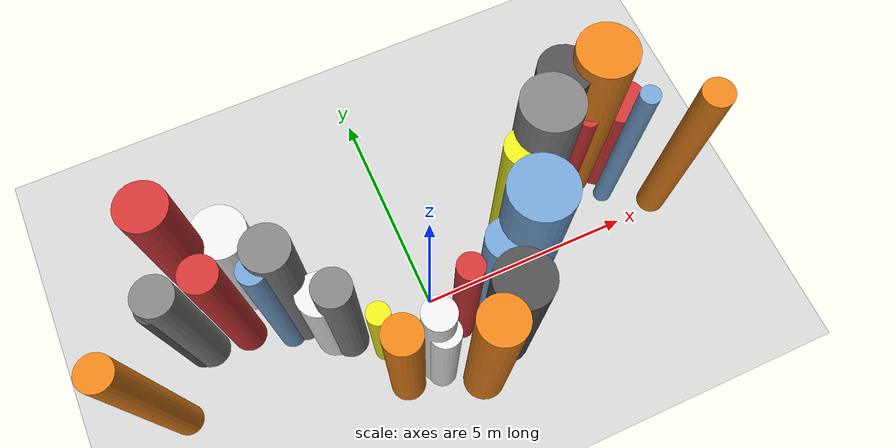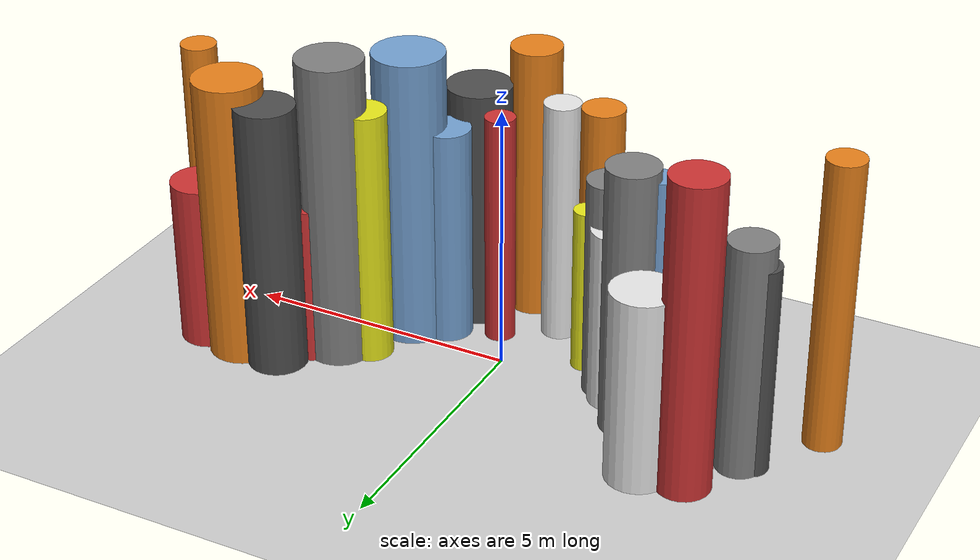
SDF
<?xml version='1.0'?>
<sdf version='1.6'>
  <world name='routeA_rl_v1__dense_recovery__rl_val__s_turn_multi_obstacle__000109'>
    <!-- Sun light -->
    <light name='sun' type='directional'>
      <cast_shadows>1</cast_shadows>
      <pose>0 0 10 0 0 0</pose>
      <diffuse>0.8 0.8 0.8 1</diffuse>
      <specular>0.2 0.2 0.2 1</specular>
      <attenuation>
        <range>1000</range>
        <constant>0.9</constant>
        <linear>0.01</linear>
        <quadratic>0.001</quadratic>
      </attenuation>
      <direction>-0.5 0.1 -0.9</direction>
    </light>

    <!-- Ground plane -->
    <model name='ground_plane'>
      <static>1</static>
      <link name='link'>
        <collision name='collision'>
          <geometry>
            <plane>
              <normal>0 0 1</normal>
              <size>100 100</size>
            </plane>
          </geometry>
          <surface>
            <contact>
              <collide_bitmask>65535</collide_bitmask>
              <ode/>
            </contact>
            <friction>
              <ode>
                <mu>100</mu>
                <mu2>50</mu2>
              </ode>
              <torsional><ode/></torsional>
            </friction>
            <bounce/>
          </surface>
          <max_contacts>10</max_contacts>
        </collision>
        <visual name='visual'>
          <cast_shadows>0</cast_shadows>
          <geometry>
            <plane>
              <normal>0 0 1</normal>
              <size>100 100</size>
            </plane>
          </geometry>
          <material>
            <script>
              <uri>file://media/materials/scripts/gazebo.material</uri>
              <n>Gazebo/Grey</n>
            </script>
          </material>
        </visual>
      </link>
    </model>

    <!-- Environment -->
    <magnetic_field>6e-06 2.3e-05 -4.2e-05</magnetic_field>
    <atmosphere type='adiabatic'/>
    <physics name='default_physics' default='0' type='ode'>
      <gravity>0 0 -9.8</gravity>
      <max_step_size>0.004</max_step_size>
      <real_time_factor>1</real_time_factor>
      <real_time_update_rate>250</real_time_update_rate>
    </physics>
    <scene>
      <ambient>0.4 0.4 0.4 1</ambient>
      <background>0.7 0.7 0.7 1</background>
      <shadows>1</shadows>
    </scene>
    <wind/>
    <spherical_coordinates>
      <surface_model>EARTH_WGS84</surface_model>
      <latitude_deg>0</latitude_deg>
      <longitude_deg>0</longitude_deg>
      <elevation>0</elevation>
      <heading_deg>0</heading_deg>
    </spherical_coordinates>

    <!-- ============ OBSTACLES (28) ============ -->
    <model name='s_turn_obs_0'>
      <static>1</static>
      <link name='link'>
        <visual name='visual'>
          <geometry>
            <cylinder>
              <radius>0.3452</radius>
              <length>5.4416</length>
            </cylinder>
          </geometry>
          <material>
            <script>
              <n>Gazebo/Orange</n>
              <uri>file://media/materials/scripts/gazebo.material</uri>
            </script>
            <ambient>0.9 0.5 0.1 1</ambient>
          </material>
        </visual>
        <collision name='collision'>
          <geometry>
            <cylinder>
              <radius>0.3452</radius>
              <length>5.4416</length>
            </cylinder>
          </geometry>
          <max_contacts>10</max_contacts>
          <surface>
            <contact><ode/></contact>
            <bounce/>
            <friction>
              <ode><mu>1</mu><mu2>1</mu2></ode>
              <torsional><ode/></torsional>
            </friction>
          </surface>
        </collision>
      </link>
      <pose>-6.0000 -0.2883 2.7208 0 0 0.0000</pose>
    </model>

    <model name='s_turn_obs_1'>
      <static>1</static>
      <link name='link'>
        <visual name='visual'>
          <geometry>
            <cylinder>
              <radius>0.3060</radius>
              <length>3.9132</length>
            </cylinder>
          </geometry>
          <material>
            <script>
              <n>Gazebo/DarkGrey</n>
              <uri>file://media/materials/scripts/gazebo.material</uri>
            </script>
            <ambient>0.3 0.3 0.3 1</ambient>
          </material>
        </visual>
        <collision name='collision'>
          <geometry>
            <cylinder>
              <radius>0.3060</radius>
              <length>3.9132</length>
            </cylinder>
          </geometry>
          <max_contacts>10</max_contacts>
          <surface>
            <contact><ode/></contact>
            <bounce/>
            <friction>
              <ode><mu>1</mu><mu2>1</mu2></ode>
              <torsional><ode/></torsional>
            </friction>
          </surface>
        </collision>
      </link>
      <pose>-5.2000 0.9692 1.9566 0 0 0.0000</pose>
    </model>

    <model name='s_turn_obs_2'>
      <static>1</static>
      <link name='link'>
        <visual name='visual'>
          <geometry>
            <cylinder>
              <radius>0.4857</radius>
              <length>5.8232</length>
            </cylinder>
          </geometry>
          <material>
            <script>
              <n>Gazebo/Red</n>
              <uri>file://media/materials/scripts/gazebo.material</uri>
            </script>
            <ambient>0.8 0.2 0.2 1</ambient>
          </material>
        </visual>
        <collision name='collision'>
          <geometry>
            <cylinder>
              <radius>0.4857</radius>
              <length>5.8232</length>
            </cylinder>
          </geometry>
          <max_contacts>10</max_contacts>
          <surface>
            <contact><ode/></contact>
            <bounce/>
            <friction>
              <ode><mu>1</mu><mu2>1</mu2></ode>
              <torsional><ode/></torsional>
            </friction>
          </surface>
        </collision>
      </link>
      <pose>-4.4000 1.9747 2.9116 0 0 0.0000</pose>
    </model>

    <model name='s_turn_obs_3'>
      <static>1</static>
      <link name='link'>
        <visual name='visual'>
          <geometry>
            <cylinder>
              <radius>0.5820</radius>
              <length>3.6021</length>
            </cylinder>
          </geometry>
          <material>
            <script>
              <n>Gazebo/White</n>
              <uri>file://media/materials/scripts/gazebo.material</uri>
            </script>
            <ambient>0.9 0.9 0.9 1</ambient>
          </material>
        </visual>
        <collision name='collision'>
          <geometry>
            <cylinder>
              <radius>0.5820</radius>
              <length>3.6021</length>
            </cylinder>
          </geometry>
          <max_contacts>10</max_contacts>
          <surface>
            <contact><ode/></contact>
            <bounce/>
            <friction>
              <ode><mu>1</mu><mu2>1</mu2></ode>
              <torsional><ode/></torsional>
            </friction>
          </surface>
        </collision>
      </link>
      <pose>-3.6000 2.0398 1.8010 0 0 0.0000</pose>
    </model>

    <model name='s_turn_obs_4'>
      <static>1</static>
      <link name='link'>
        <visual name='visual'>
          <geometry>
            <cylinder>
              <radius>0.4750</radius>
              <length>5.0209</length>
            </cylinder>
          </geometry>
          <material>
            <script>
              <n>Gazebo/Grey</n>
              <uri>file://media/materials/scripts/gazebo.material</uri>
            </script>
            <ambient>0.5 0.5 0.5 1</ambient>
          </material>
        </visual>
        <collision name='collision'>
          <geometry>
            <cylinder>
              <radius>0.4750</radius>
              <length>5.0209</length>
            </cylinder>
          </geometry>
          <max_contacts>10</max_contacts>
          <surface>
            <contact><ode/></contact>
            <bounce/>
            <friction>
              <ode><mu>1</mu><mu2>1</mu2></ode>
              <torsional><ode/></torsional>
            </friction>
          </surface>
        </collision>
      </link>
      <pose>-2.8000 0.7762 2.5105 0 0 0.0000</pose>
    </model>

    <model name='s_turn_obs_5'>
      <static>1</static>
      <link name='link'>
        <visual name='visual'>
          <geometry>
            <cylinder>
              <radius>0.4033</radius>
              <length>4.1637</length>
            </cylinder>
          </geometry>
          <material>
            <script>
              <n>Gazebo/Grey</n>
              <uri>file://media/materials/scripts/gazebo.material</uri>
            </script>
            <ambient>0.5 0.5 0.5 1</ambient>
          </material>
        </visual>
        <collision name='collision'>
          <geometry>
            <cylinder>
              <radius>0.4033</radius>
              <length>4.1637</length>
            </cylinder>
          </geometry>
          <max_contacts>10</max_contacts>
          <surface>
            <contact><ode/></contact>
            <bounce/>
            <friction>
              <ode><mu>1</mu><mu2>1</mu2></ode>
              <torsional><ode/></torsional>
            </friction>
          </surface>
        </collision>
      </link>
      <pose>-2.0000 -0.0886 2.0819 0 0 0.0000</pose>
    </model>

    <model name='s_turn_obs_6'>
      <static>1</static>
      <link name='link'>
        <visual name='visual'>
          <geometry>
            <cylinder>
              <radius>0.3929</radius>
              <length>4.6764</length>
            </cylinder>
          </geometry>
          <material>
            <script>
              <n>Gazebo/Orange</n>
              <uri>file://media/materials/scripts/gazebo.material</uri>
            </script>
            <ambient>0.9 0.5 0.1 1</ambient>
          </material>
        </visual>
        <collision name='collision'>
          <geometry>
            <cylinder>
              <radius>0.3929</radius>
              <length>4.6764</length>
            </cylinder>
          </geometry>
          <max_contacts>10</max_contacts>
          <surface>
            <contact><ode/></contact>
            <bounce/>
            <friction>
              <ode><mu>1</mu><mu2>1</mu2></ode>
              <torsional><ode/></torsional>
            </friction>
          </surface>
        </collision>
      </link>
      <pose>-1.2000 -1.5352 2.3382 0 0 0.0000</pose>
    </model>

    <model name='s_turn_obs_7'>
      <static>1</static>
      <link name='link'>
        <visual name='visual'>
          <geometry>
            <cylinder>
              <radius>0.3205</radius>
              <length>3.8468</length>
            </cylinder>
          </geometry>
          <material>
            <script>
              <n>Gazebo/White</n>
              <uri>file://media/materials/scripts/gazebo.material</uri>
            </script>
            <ambient>0.9 0.9 0.9 1</ambient>
          </material>
        </visual>
        <collision name='collision'>
          <geometry>
            <cylinder>
              <radius>0.3205</radius>
              <length>3.8468</length>
            </cylinder>
          </geometry>
          <max_contacts>10</max_contacts>
          <surface>
            <contact><ode/></contact>
            <bounce/>
            <friction>
              <ode><mu>1</mu><mu2>1</mu2></ode>
              <torsional><ode/></torsional>
            </friction>
          </surface>
        </collision>
      </link>
      <pose>-0.4000 -1.6227 1.9234 0 0 0.0000</pose>
    </model>

    <model name='s_turn_obs_8'>
      <static>1</static>
      <link name='link'>
        <visual name='visual'>
          <geometry>
            <cylinder>
              <radius>0.4733</radius>
              <length>5.2748</length>
            </cylinder>
          </geometry>
          <material>
            <script>
              <n>Gazebo/Orange</n>
              <uri>file://media/materials/scripts/gazebo.material</uri>
            </script>
            <ambient>0.9 0.5 0.1 1</ambient>
          </material>
        </visual>
        <collision name='collision'>
          <geometry>
            <cylinder>
              <radius>0.4733</radius>
              <length>5.2748</length>
            </cylinder>
          </geometry>
          <max_contacts>10</max_contacts>
          <surface>
            <contact><ode/></contact>
            <bounce/>
            <friction>
              <ode><mu>1</mu><mu2>1</mu2></ode>
              <torsional><ode/></torsional>
            </friction>
          </surface>
        </collision>
      </link>
      <pose>0.4000 -2.1382 2.6374 0 0 0.0000</pose>
    </model>

    <model name='s_turn_obs_9'>
      <static>1</static>
      <link name='link'>
        <visual name='visual'>
          <geometry>
            <cylinder>
              <radius>0.6036</radius>
              <length>4.6276</length>
            </cylinder>
          </geometry>
          <material>
            <script>
              <n>Gazebo/DarkGrey</n>
              <uri>file://media/materials/scripts/gazebo.material</uri>
            </script>
            <ambient>0.3 0.3 0.3 1</ambient>
          </material>
        </visual>
        <collision name='collision'>
          <geometry>
            <cylinder>
              <radius>0.6036</radius>
              <length>4.6276</length>
            </cylinder>
          </geometry>
          <max_contacts>10</max_contacts>
          <surface>
            <contact><ode/></contact>
            <bounce/>
            <friction>
              <ode><mu>1</mu><mu2>1</mu2></ode>
              <torsional><ode/></torsional>
            </friction>
          </surface>
        </collision>
      </link>
      <pose>1.2000 -1.4764 2.3138 0 0 0.0000</pose>
    </model>

    <model name='s_turn_obs_10'>
      <static>1</static>
      <link name='link'>
        <visual name='visual'>
          <geometry>
            <cylinder>
              <radius>0.6620</radius>
              <length>5.5486</length>
            </cylinder>
          </geometry>
          <material>
            <script>
              <n>Gazebo/Blue</n>
              <uri>file://media/materials/scripts/gazebo.material</uri>
            </script>
            <ambient>0.447 0.624 0.812 1</ambient>
          </material>
        </visual>
        <collision name='collision'>
          <geometry>
            <cylinder>
              <radius>0.6620</radius>
              <length>5.5486</length>
            </cylinder>
          </geometry>
          <max_contacts>10</max_contacts>
          <surface>
            <contact><ode/></contact>
            <bounce/>
            <friction>
              <ode><mu>1</mu><mu2>1</mu2></ode>
              <torsional><ode/></torsional>
            </friction>
          </surface>
        </collision>
      </link>
      <pose>2.0000 -0.3585 2.7743 0 0 0.0000</pose>
    </model>

    <model name='s_turn_obs_11'>
      <static>1</static>
      <link name='link'>
        <visual name='visual'>
          <geometry>
            <cylinder>
              <radius>0.6121</radius>
              <length>5.8030</length>
            </cylinder>
          </geometry>
          <material>
            <script>
              <n>Gazebo/Grey</n>
              <uri>file://media/materials/scripts/gazebo.material</uri>
            </script>
            <ambient>0.5 0.5 0.5 1</ambient>
          </material>
        </visual>
        <collision name='collision'>
          <geometry>
            <cylinder>
              <radius>0.6121</radius>
              <length>5.8030</length>
            </cylinder>
          </geometry>
          <max_contacts>10</max_contacts>
          <surface>
            <contact><ode/></contact>
            <bounce/>
            <friction>
              <ode><mu>1</mu><mu2>1</mu2></ode>
              <torsional><ode/></torsional>
            </friction>
          </surface>
        </collision>
      </link>
      <pose>2.8000 0.9427 2.9015 0 0 0.0000</pose>
    </model>

    <model name='s_turn_obs_12'>
      <static>1</static>
      <link name='link'>
        <visual name='visual'>
          <geometry>
            <cylinder>
              <radius>0.5480</radius>
              <length>5.1055</length>
            </cylinder>
          </geometry>
          <material>
            <script>
              <n>Gazebo/DarkGrey</n>
              <uri>file://media/materials/scripts/gazebo.material</uri>
            </script>
            <ambient>0.3 0.3 0.3 1</ambient>
          </material>
        </visual>
        <collision name='collision'>
          <geometry>
            <cylinder>
              <radius>0.5480</radius>
              <length>5.1055</length>
            </cylinder>
          </geometry>
          <max_contacts>10</max_contacts>
          <surface>
            <contact><ode/></contact>
            <bounce/>
            <friction>
              <ode><mu>1</mu><mu2>1</mu2></ode>
              <torsional><ode/></torsional>
            </friction>
          </surface>
        </collision>
      </link>
      <pose>3.6000 1.7902 2.5528 0 0 0.0000</pose>
    </model>

    <model name='s_turn_obs_13'>
      <static>1</static>
      <link name='link'>
        <visual name='visual'>
          <geometry>
            <cylinder>
              <radius>0.6222</radius>
              <length>5.3927</length>
            </cylinder>
          </geometry>
          <material>
            <script>
              <n>Gazebo/Orange</n>
              <uri>file://media/materials/scripts/gazebo.material</uri>
            </script>
            <ambient>0.9 0.5 0.1 1</ambient>
          </material>
        </visual>
        <collision name='collision'>
          <geometry>
            <cylinder>
              <radius>0.6222</radius>
              <length>5.3927</length>
            </cylinder>
          </geometry>
          <max_contacts>10</max_contacts>
          <surface>
            <contact><ode/></contact>
            <bounce/>
            <friction>
              <ode><mu>1</mu><mu2>1</mu2></ode>
              <torsional><ode/></torsional>
            </friction>
          </surface>
        </collision>
      </link>
      <pose>4.4000 1.6831 2.6964 0 0 0.0000</pose>
    </model>

    <model name='s_turn_obs_14'>
      <static>1</static>
      <link name='link'>
        <visual name='visual'>
          <geometry>
            <cylinder>
              <radius>0.5362</radius>
              <length>3.1604</length>
            </cylinder>
          </geometry>
          <material>
            <script>
              <n>Gazebo/Red</n>
              <uri>file://media/materials/scripts/gazebo.material</uri>
            </script>
            <ambient>0.8 0.2 0.2 1</ambient>
          </material>
        </visual>
        <collision name='collision'>
          <geometry>
            <cylinder>
              <radius>0.5362</radius>
              <length>3.1604</length>
            </cylinder>
          </geometry>
          <max_contacts>10</max_contacts>
          <surface>
            <contact><ode/></contact>
            <bounce/>
            <friction>
              <ode><mu>1</mu><mu2>1</mu2></ode>
              <torsional><ode/></torsional>
            </friction>
          </surface>
        </collision>
      </link>
      <pose>5.2000 1.5671 1.5802 0 0 0.0000</pose>
    </model>

    <model name='s_turn_obs_15'>
      <static>1</static>
      <link name='link'>
        <visual name='visual'>
          <geometry>
            <cylinder>
              <radius>0.3290</radius>
              <length>5.0804</length>
            </cylinder>
          </geometry>
          <material>
            <script>
              <n>Gazebo/Orange</n>
              <uri>file://media/materials/scripts/gazebo.material</uri>
            </script>
            <ambient>0.9 0.5 0.1 1</ambient>
          </material>
        </visual>
        <collision name='collision'>
          <geometry>
            <cylinder>
              <radius>0.3290</radius>
              <length>5.0804</length>
            </cylinder>
          </geometry>
          <max_contacts>10</max_contacts>
          <surface>
            <contact><ode/></contact>
            <bounce/>
            <friction>
              <ode><mu>1</mu><mu2>1</mu2></ode>
              <torsional><ode/></torsional>
            </friction>
          </surface>
        </collision>
      </link>
      <pose>6.0000 0.1907 2.5402 0 0 0.0000</pose>
    </model>

    <model name='s_turn_obs2_0'>
      <static>1</static>
      <link name='link'>
        <visual name='visual'>
          <geometry>
            <cylinder>
              <radius>0.4214</radius>
              <length>4.3391</length>
            </cylinder>
          </geometry>
          <material>
            <script>
              <n>Gazebo/Grey</n>
              <uri>file://media/materials/scripts/gazebo.material</uri>
            </script>
            <ambient>0.5 0.5 0.5 1</ambient>
          </material>
        </visual>
        <collision name='collision'>
          <geometry>
            <cylinder>
              <radius>0.4214</radius>
              <length>4.3391</length>
            </cylinder>
          </geometry>
          <max_contacts>10</max_contacts>
          <surface>
            <contact><ode/></contact>
            <bounce/>
            <friction>
              <ode><mu>1</mu><mu2>1</mu2></ode>
              <torsional><ode/></torsional>
            </friction>
          </surface>
        </collision>
      </link>
      <pose>-5.0000 1.0142 2.1696 0 0 0.0000</pose>
    </model>

    <model name='s_turn_obs2_1'>
      <static>1</static>
      <link name='link'>
        <visual name='visual'>
          <geometry>
            <cylinder>
              <radius>0.3874</radius>
              <length>4.5462</length>
            </cylinder>
          </geometry>
          <material>
            <script>
              <n>Gazebo/Red</n>
              <uri>file://media/materials/scripts/gazebo.material</uri>
            </script>
            <ambient>0.8 0.2 0.2 1</ambient>
          </material>
        </visual>
        <collision name='collision'>
          <geometry>
            <cylinder>
              <radius>0.3874</radius>
              <length>4.5462</length>
            </cylinder>
          </geometry>
          <max_contacts>10</max_contacts>
          <surface>
            <contact><ode/></contact>
            <bounce/>
            <friction>
              <ode><mu>1</mu><mu2>1</mu2></ode>
              <torsional><ode/></torsional>
            </friction>
          </surface>
        </collision>
      </link>
      <pose>-4.0909 0.9881 2.2731 0 0 0.0000</pose>
    </model>

    <model name='s_turn_obs2_2'>
      <static>1</static>
      <link name='link'>
        <visual name='visual'>
          <geometry>
            <cylinder>
              <radius>0.2843</radius>
              <length>4.8138</length>
            </cylinder>
          </geometry>
          <material>
            <script>
              <n>Gazebo/Blue</n>
              <uri>file://media/materials/scripts/gazebo.material</uri>
            </script>
            <ambient>0.447 0.624 0.812 1</ambient>
          </material>
        </visual>
        <collision name='collision'>
          <geometry>
            <cylinder>
              <radius>0.2843</radius>
              <length>4.8138</length>
            </cylinder>
          </geometry>
          <max_contacts>10</max_contacts>
          <surface>
            <contact><ode/></contact>
            <bounce/>
            <friction>
              <ode><mu>1</mu><mu2>1</mu2></ode>
              <torsional><ode/></torsional>
            </friction>
          </surface>
        </collision>
      </link>
      <pose>-3.1818 0.5675 2.4069 0 0 0.0000</pose>
    </model>

    <model name='s_turn_obs2_3'>
      <static>1</static>
      <link name='link'>
        <visual name='visual'>
          <geometry>
            <cylinder>
              <radius>0.4660</radius>
              <length>3.3963</length>
            </cylinder>
          </geometry>
          <material>
            <script>
              <n>Gazebo/White</n>
              <uri>file://media/materials/scripts/gazebo.material</uri>
            </script>
            <ambient>0.9 0.9 0.9 1</ambient>
          </material>
        </visual>
        <collision name='collision'>
          <geometry>
            <cylinder>
              <radius>0.4660</radius>
              <length>3.3963</length>
            </cylinder>
          </geometry>
          <max_contacts>10</max_contacts>
          <surface>
            <contact><ode/></contact>
            <bounce/>
            <friction>
              <ode><mu>1</mu><mu2>1</mu2></ode>
              <torsional><ode/></torsional>
            </friction>
          </surface>
        </collision>
      </link>
      <pose>-2.2727 0.1400 1.6982 0 0 0.0000</pose>
    </model>

    <model name='s_turn_obs2_4'>
      <static>1</static>
      <link name='link'>
        <visual name='visual'>
          <geometry>
            <cylinder>
              <radius>0.2508</radius>
              <length>3.1662</length>
            </cylinder>
          </geometry>
          <material>
            <script>
              <n>Gazebo/Yellow</n>
              <uri>file://media/materials/scripts/gazebo.material</uri>
            </script>
            <ambient>0.9 0.9 0.1 1</ambient>
          </material>
        </visual>
        <collision name='collision'>
          <geometry>
            <cylinder>
              <radius>0.2508</radius>
              <length>3.1662</length>
            </cylinder>
          </geometry>
          <max_contacts>10</max_contacts>
          <surface>
            <contact><ode/></contact>
            <bounce/>
            <friction>
              <ode><mu>1</mu><mu2>1</mu2></ode>
              <torsional><ode/></torsional>
            </friction>
          </surface>
        </collision>
      </link>
      <pose>-1.3636 -0.6111 1.5831 0 0 0.0000</pose>
    </model>

    <model name='s_turn_obs2_5'>
      <static>1</static>
      <link name='link'>
        <visual name='visual'>
          <geometry>
            <cylinder>
              <radius>0.3396</radius>
              <length>4.6499</length>
            </cylinder>
          </geometry>
          <material>
            <script>
              <n>Gazebo/White</n>
              <uri>file://media/materials/scripts/gazebo.material</uri>
            </script>
            <ambient>0.9 0.9 0.9 1</ambient>
          </material>
        </visual>
        <collision name='collision'>
          <geometry>
            <cylinder>
              <radius>0.3396</radius>
              <length>4.6499</length>
            </cylinder>
          </geometry>
          <max_contacts>10</max_contacts>
          <surface>
            <contact><ode/></contact>
            <bounce/>
            <friction>
              <ode><mu>1</mu><mu2>1</mu2></ode>
              <torsional><ode/></torsional>
            </friction>
          </surface>
        </collision>
      </link>
      <pose>-0.4545 -1.4460 2.3249 0 0 0.0000</pose>
    </model>

    <model name='s_turn_obs2_6'>
      <static>1</static>
      <link name='link'>
        <visual name='visual'>
          <geometry>
            <cylinder>
              <radius>0.2802</radius>
              <length>4.4397</length>
            </cylinder>
          </geometry>
          <material>
            <script>
              <n>Gazebo/Red</n>
              <uri>file://media/materials/scripts/gazebo.material</uri>
            </script>
            <ambient>0.8 0.2 0.2 1</ambient>
          </material>
        </visual>
        <collision name='collision'>
          <geometry>
            <cylinder>
              <radius>0.2802</radius>
              <length>4.4397</length>
            </cylinder>
          </geometry>
          <max_contacts>10</max_contacts>
          <surface>
            <contact><ode/></contact>
            <bounce/>
            <friction>
              <ode><mu>1</mu><mu2>1</mu2></ode>
              <torsional><ode/></torsional>
            </friction>
          </surface>
        </collision>
      </link>
      <pose>0.4545 -0.8310 2.2199 0 0 0.0000</pose>
    </model>

    <model name='s_turn_obs2_7'>
      <static>1</static>
      <link name='link'>
        <visual name='visual'>
          <geometry>
            <cylinder>
              <radius>0.4425</radius>
              <length>4.1558</length>
            </cylinder>
          </geometry>
          <material>
            <script>
              <n>Gazebo/Blue</n>
              <uri>file://media/materials/scripts/gazebo.material</uri>
            </script>
            <ambient>0.447 0.624 0.812 1</ambient>
          </material>
        </visual>
        <collision name='collision'>
          <geometry>
            <cylinder>
              <radius>0.4425</radius>
              <length>4.1558</length>
            </cylinder>
          </geometry>
          <max_contacts>10</max_contacts>
          <surface>
            <contact><ode/></contact>
            <bounce/>
            <friction>
              <ode><mu>1</mu><mu2>1</mu2></ode>
              <torsional><ode/></torsional>
            </friction>
          </surface>
        </collision>
      </link>
      <pose>1.3636 -0.5408 2.0779 0 0 0.0000</pose>
    </model>

    <model name='s_turn_obs2_8'>
      <static>1</static>
      <link name='link'>
        <visual name='visual'>
          <geometry>
            <cylinder>
              <radius>0.4078</radius>
              <length>4.8505</length>
            </cylinder>
          </geometry>
          <material>
            <script>
              <n>Gazebo/Yellow</n>
              <uri>file://media/materials/scripts/gazebo.material</uri>
            </script>
            <ambient>0.9 0.9 0.1 1</ambient>
          </material>
        </visual>
        <collision name='collision'>
          <geometry>
            <cylinder>
              <radius>0.4078</radius>
              <length>4.8505</length>
            </cylinder>
          </geometry>
          <max_contacts>10</max_contacts>
          <surface>
            <contact><ode/></contact>
            <bounce/>
            <friction>
              <ode><mu>1</mu><mu2>1</mu2></ode>
              <torsional><ode/></torsional>
            </friction>
          </surface>
        </collision>
      </link>
      <pose>2.2727 0.7420 2.4252 0 0 0.0000</pose>
    </model>

    <model name='s_turn_obs2_9'>
      <static>1</static>
      <link name='link'>
        <visual name='visual'>
          <geometry>
            <cylinder>
              <radius>0.3230</radius>
              <length>3.0200</length>
            </cylinder>
          </geometry>
          <material>
            <script>
              <n>Gazebo/Red</n>
              <uri>file://media/materials/scripts/gazebo.material</uri>
            </script>
            <ambient>0.8 0.2 0.2 1</ambient>
          </material>
        </visual>
        <collision name='collision'>
          <geometry>
            <cylinder>
              <radius>0.3230</radius>
              <length>3.0200</length>
            </cylinder>
          </geometry>
          <max_contacts>10</max_contacts>
          <surface>
            <contact><ode/></contact>
            <bounce/>
            <friction>
              <ode><mu>1</mu><mu2>1</mu2></ode>
              <torsional><ode/></torsional>
            </friction>
          </surface>
        </collision>
      </link>
      <pose>3.1818 1.2769 1.5100 0 0 0.0000</pose>
    </model>

    <model name='s_turn_obs2_10'>
      <static>1</static>
      <link name='link'>
        <visual name='visual'>
          <geometry>
            <cylinder>
              <radius>0.2046</radius>
              <length>3.7731</length>
            </cylinder>
          </geometry>
          <material>
            <script>
              <n>Gazebo/Red</n>
              <uri>file://media/materials/scripts/gazebo.material</uri>
            </script>
            <ambient>0.8 0.2 0.2 1</ambient>
          </material>
        </visual>
        <collision name='collision'>
          <geometry>
            <cylinder>
              <radius>0.2046</radius>
              <length>3.7731</length>
            </cylinder>
          </geometry>
          <max_contacts>10</max_contacts>
          <surface>
            <contact><ode/></contact>
            <bounce/>
            <friction>
              <ode><mu>1</mu><mu2>1</mu2></ode>
              <torsional><ode/></torsional>
            </friction>
          </surface>
        </collision>
      </link>
      <pose>4.0909 1.2253 1.8865 0 0 0.0000</pose>
    </model>

    <model name='s_turn_obs2_11'>
      <static>1</static>
      <link name='link'>
        <visual name='visual'>
          <geometry>
            <cylinder>
              <radius>0.2140</radius>
              <length>4.7244</length>
            </cylinder>
          </geometry>
          <material>
            <script>
              <n>Gazebo/Blue</n>
              <uri>file://media/materials/scripts/gazebo.material</uri>
            </script>
            <ambient>0.447 0.624 0.812 1</ambient>
          </material>
        </visual>
        <collision name='collision'>
          <geometry>
            <cylinder>
              <radius>0.2140</radius>
              <length>4.7244</length>
            </cylinder>
          </geometry>
          <max_contacts>10</max_contacts>
          <surface>
            <contact><ode/></contact>
            <bounce/>
            <friction>
              <ode><mu>1</mu><mu2>1</mu2></ode>
              <torsional><ode/></torsional>
            </friction>
          </surface>
        </collision>
      </link>
      <pose>5.0000 0.8140 2.3622 0 0 0.0000</pose>
    </model>

    <!-- GUI camera -->
    <gui fullscreen='0'>
      <camera name='user_camera'>
        <pose>-15 0 18 0 0.85 0.15</pose>
        <view_controller>orbit</view_controller>
        <projection_type>perspective</projection_type>
      </camera>
    </gui>
  </world>
</sdf>
